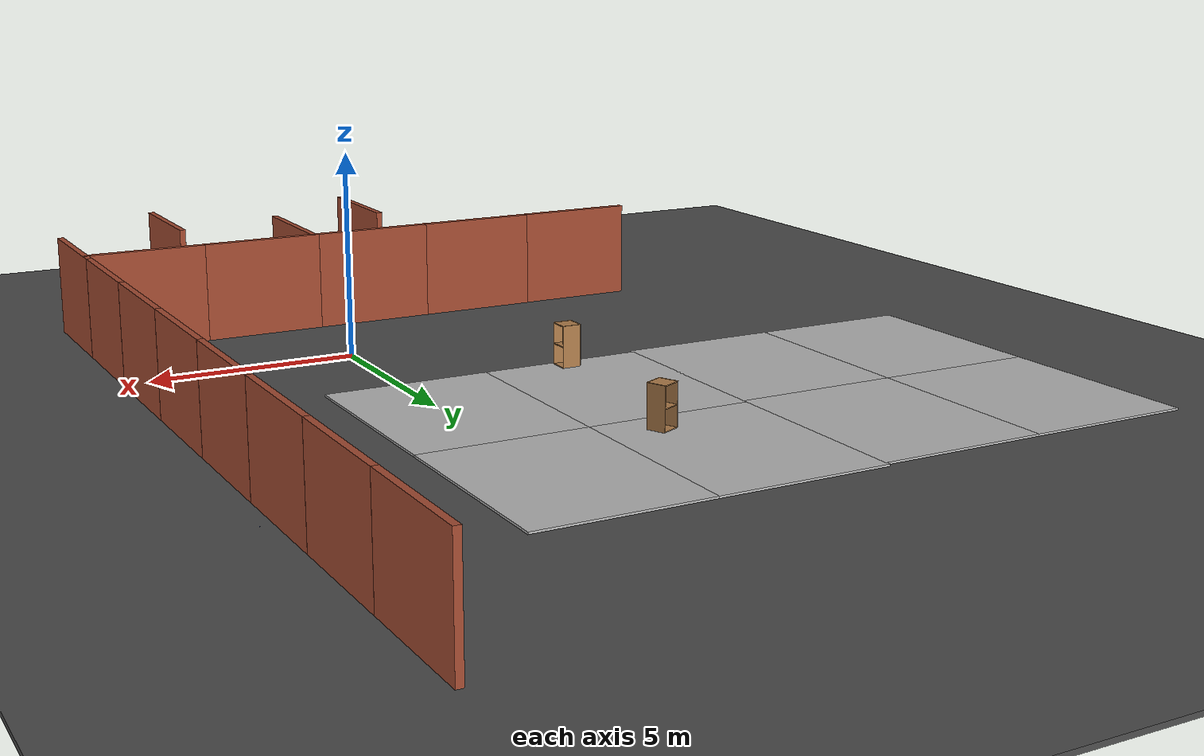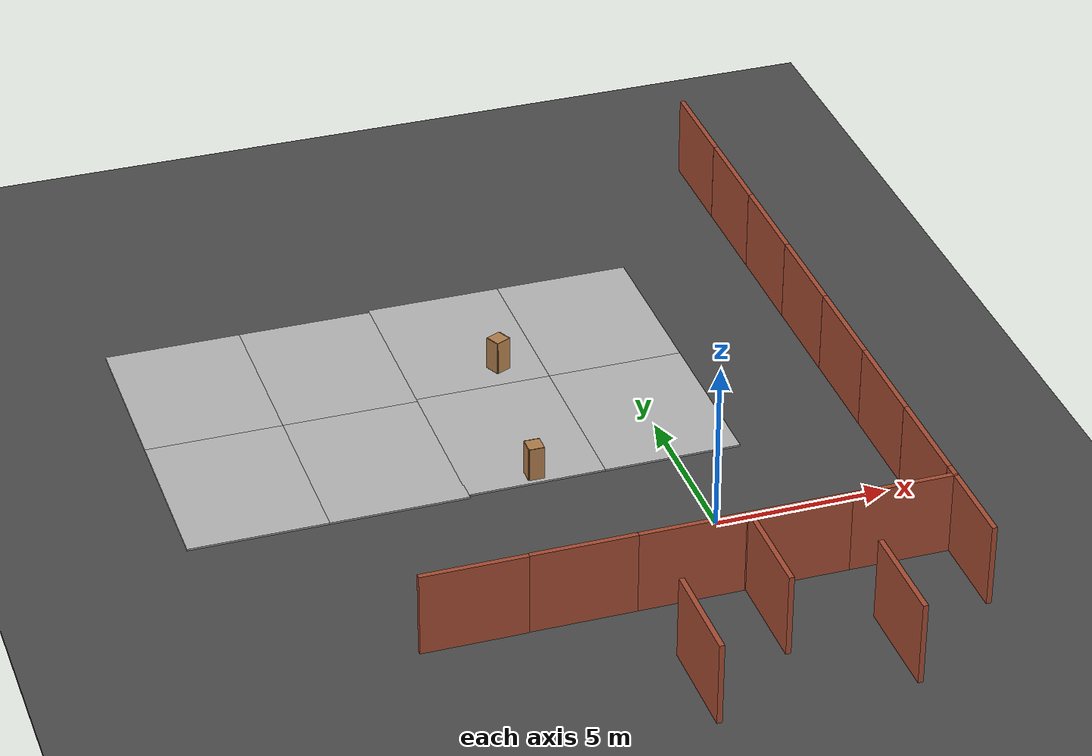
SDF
<sdf version="1.6">
 <world name="default">
  <scene>
   <sky><clouds><speed>5</speed></clouds></sky>
   <ambient>0.4 0.4 0.4 1</ambient>
   <background>0.7 0.7 0.7 1</background>
   <shadows>1</shadows>
  </scene>
  <light name="sun" type="directional">
   <pose>0 0 10 0 -0 0</pose>
   <diffuse>0.8 0.8 0.8 1</diffuse>
   <specular>0.2 0.2 0.2 1</specular>
   <attenuation>
    <range>1000</range>
    <constant>0.9</constant>
    <linear>0.01</linear>
    <quadratic>0.001</quadratic>
   </attenuation>
   <direction>-0.5 0.1 -0.9</direction>
  </light>
  <model name="ground_plane">
   <static>1</static>
   <link name="link">
    <collision name="collision">
     <geometry><plane><normal>0 0 1</normal><size>100 100</size></plane></geometry>
     <surface><friction><ode><mu>100</mu><mu2>50</mu2></ode></friction></surface>
    </collision>
    <visual name="visual">
     <cast_shadows>0</cast_shadows>
     <geometry><plane><normal>0 0 1</normal><size>100 100</size></plane></geometry>
     <material>
      <script><uri>file://media/materials/scripts/gazebo.material</uri><name>Gazebo/Grey</name></script>
     </material>
    </visual>
   </link>
  </model>
  <gravity>0 0 -9.8</gravity>
  <magnetic_field>6e-06 2.3e-05 -4.2e-05</magnetic_field>
  <atmosphere type="adiabatic"/>
  <physics name="default_physics" default="0" type="ode">
   <max_step_size>0.01</max_step_size>
   <real_time_factor>1</real_time_factor>
   <real_time_update_rate>100</real_time_update_rate>
  </physics>
  <scene><ambient>0.4 0.4 0.4 1</ambient><background>0.7 0.7 0.7 1</background><shadows>1</shadows></scene>
  <spherical_coordinates>
   <surface_model>EARTH_WGS84</surface_model>
   <latitude_deg>0</latitude_deg>
   <longitude_deg>0</longitude_deg>
   <elevation>0</elevation>
   <heading_deg>0</heading_deg>
  </spherical_coordinates>
  <model name="wall_brick_3m">
   <pose>2.53536 -6.79833 0 0 -0 1.57</pose>
   <link name="Wall_2">
    <collision name="Wall_2_Collision">
     <geometry><box><size>3 0.15 2.5</size></box></geometry>
     <pose>0 0 1.25 0 -0 0</pose>
    </collision>
    <visual name="Wall_2_Visual">
     <pose>0 0 1.25 0 -0 0</pose>
     <geometry><box><size>3 0.15 2.5</size></box></geometry>
     <material>
      <script><uri>file://media/materials/scripts/gazebo.material</uri><name>Gazebo/Bricks</name></script>
      <ambient>1 1 1 1</ambient>
     </material>
     <meta><layer>0</layer></meta>
    </visual>
   </link>
   <static>1</static>
  </model>
  <model name="wall_brick_3m_clone">
   <pose>-0.265232 -4.62667 0 0 -0 1.57</pose>
   <link name="Wall_2">
    <collision name="Wall_2_Collision">
     <geometry><box><size>3 0.15 2.5</size></box></geometry>
     <pose>0 0 1.25 0 -0 0</pose>
    </collision>
    <visual name="Wall_2_Visual">
     <pose>0 0 1.25 0 -0 0</pose>
     <geometry><box><size>3 0.15 2.5</size></box></geometry>
     <material>
      <script><uri>file://media/materials/scripts/gazebo.material</uri><name>Gazebo/Bricks</name></script>
      <ambient>1 1 1 1</ambient>
     </material>
     <meta><layer>0</layer></meta>
    </visual>
   </link>
   <static>1</static>
  </model>
  <model name="wall_brick_3m_clone_clone">
   <pose>-2.96784 -6.78032 0 0 -0 1.57</pose>
   <link name="Wall_2">
    <collision name="Wall_2_Collision">
     <geometry><box><size>3 0.15 2.5</size></box></geometry>
     <pose>0 0 1.25 0 -0 0</pose>
    </collision>
    <visual name="Wall_2_Visual">
     <pose>0 0 1.25 0 -0 0</pose>
     <geometry><box><size>3 0.15 2.5</size></box></geometry>
     <material>
      <script><uri>file://media/materials/scripts/gazebo.material</uri><name>Gazebo/Bricks</name></script>
      <ambient>1 1 1 1</ambient>
     </material>
     <meta><layer>0</layer></meta>
    </visual>
   </link>
   <static>1</static>
  </model>
  <model name="wall_brick_3m_clone_0">
   <pose>5.57817 -4.2114 0 0 -0 1.57</pose>
   <link name="Wall_2">
    <collision name="Wall_2_Collision">
     <geometry><box><size>3 0.15 2.5</size></box></geometry>
     <pose>0 0 1.25 0 -0 0</pose>
    </collision>
    <visual name="Wall_2_Visual">
     <pose>0 0 1.25 0 -0 0</pose>
     <geometry><box><size>3 0.15 2.5</size></box></geometry>
     <material>
      <script><uri>file://media/materials/scripts/gazebo.material</uri><name>Gazebo/Bricks</name></script>
      <ambient>1 1 1 1</ambient>
     </material>
     <meta><layer>0</layer></meta>
    </visual>
   </link>
   <static>1</static>
  </model>
  <model name="wall_brick_3m_clone_1">
   <pose>4.12513 -3.1 0 0 -0 0</pose>
   <link name="Wall_2">
    <collision name="Wall_2_Collision">
     <geometry><box><size>3 0.15 2.5</size></box></geometry>
     <pose>0 0 1.25 0 -0 0</pose>
    </collision>
    <visual name="Wall_2_Visual">
     <pose>0 0 1.25 0 -0 0</pose>
     <geometry><box><size>3 0.15 2.5</size></box></geometry>
     <material>
      <script><uri>file://media/materials/scripts/gazebo.material</uri><name>Gazebo/Bricks</name></script>
      <ambient>1 1 1 1</ambient>
     </material>
     <meta><layer>0</layer></meta>
    </visual>
   </link>
   <static>1</static>
  </model>
  <model name="wall_brick_3m_clone_1_clone">
   <pose>1.12513 -3.1 0 0 -0 0</pose>
   <link name="Wall_2">
    <collision name="Wall_2_Collision">
     <geometry><box><size>3 0.15 2.5</size></box></geometry>
     <pose>0 0 1.25 0 -0 0</pose>
    </collision>
    <visual name="Wall_2_Visual">
     <pose>0 0 1.25 0 -0 0</pose>
     <geometry><box><size>3 0.15 2.5</size></box></geometry>
     <material>
      <script><uri>file://media/materials/scripts/gazebo.material</uri><name>Gazebo/Bricks</name></script>
      <ambient>1 1 1 1</ambient>
     </material>
     <meta><layer>0</layer></meta>
    </visual>
   </link>
   <static>1</static>
  </model>
  <model name="wall_brick_3m_clone_1_clone_0">
   <pose>-1.87487 -3.1 0 0 -0 0</pose>
   <link name="Wall_2">
    <collision name="Wall_2_Collision">
     <geometry><box><size>3 0.15 2.5</size></box></geometry>
     <pose>0 0 1.25 0 -0 0</pose>
    </collision>
    <visual name="Wall_2_Visual">
     <pose>0 0 1.25 0 -0 0</pose>
     <geometry><box><size>3 0.15 2.5</size></box></geometry>
     <material>
      <script><uri>file://media/materials/scripts/gazebo.material</uri><name>Gazebo/Bricks</name></script>
      <ambient>1 1 1 1</ambient>
     </material>
     <meta><layer>0</layer></meta>
    </visual>
   </link>
   <static>1</static>
  </model>
  <model name="wall_brick_3m_clone_1_clone_1">
   <pose>-4.87487 -3.1 0 0 -0 0</pose>
   <link name="Wall_2">
    <collision name="Wall_2_Collision">
     <geometry><box><size>3 0.15 2.5</size></box></geometry>
     <pose>0 0 1.25 0 -0 0</pose>
    </collision>
    <visual name="Wall_2_Visual">
     <pose>0 0 1.25 0 -0 0</pose>
     <geometry><box><size>3 0.15 2.5</size></box></geometry>
     <material>
      <script><uri>file://media/materials/scripts/gazebo.material</uri><name>Gazebo/Bricks</name></script>
      <ambient>1 1 1 1</ambient>
     </material>
     <meta><layer>0</layer></meta>
    </visual>
   </link>
   <static>1</static>
  </model>
  <model name="wall_brick_3m_clone_1_clone_1_clone">
   <pose>-7.87487 -3.11682 0 0 -0 0</pose>
   <link name="Wall_2">
    <collision name="Wall_2_Collision">
     <geometry><box><size>3 0.15 2.5</size></box></geometry>
     <pose>0 0 1.25 0 -0 0</pose>
    </collision>
    <visual name="Wall_2_Visual">
     <pose>0 0 1.25 0 -0 0</pose>
     <geometry><box><size>3 0.15 2.5</size></box></geometry>
     <material>
      <script><uri>file://media/materials/scripts/gazebo.material</uri><name>Gazebo/Bricks</name></script>
      <ambient>1 1 1 1</ambient>
     </material>
     <meta><layer>0</layer></meta>
    </visual>
   </link>
   <static>1</static>
  </model>
  <model name="wall_brick_3m_clone_0_clone">
   <pose>5.57817 -1.21128 0 0 -0 1.57</pose>
   <link name="Wall_2">
    <collision name="Wall_2_Collision">
     <geometry><box><size>3 0.15 2.5</size></box></geometry>
     <pose>0 0 1.25 0 -0 0</pose>
    </collision>
    <visual name="Wall_2_Visual">
     <pose>0 0 1.25 0 -0 0</pose>
     <geometry><box><size>3 0.15 2.5</size></box></geometry>
     <material>
      <script><uri>file://media/materials/scripts/gazebo.material</uri><name>Gazebo/Bricks</name></script>
      <ambient>1 1 1 1</ambient>
     </material>
     <meta><layer>0</layer></meta>
    </visual>
   </link>
   <static>1</static>
  </model>
  <model name="wall_brick_3m_clone_0_clone_clone">
   <pose>5.57817 1.78884 0 0 -0 1.57</pose>
   <link name="Wall_2">
    <collision name="Wall_2_Collision">
     <geometry><box><size>3 0.15 2.5</size></box></geometry>
     <pose>0 0 1.25 0 -0 0</pose>
    </collision>
    <visual name="Wall_2_Visual">
     <pose>0 0 1.25 0 -0 0</pose>
     <geometry><box><size>3 0.15 2.5</size></box></geometry>
     <material>
      <script><uri>file://media/materials/scripts/gazebo.material</uri><name>Gazebo/Bricks</name></script>
      <ambient>1 1 1 1</ambient>
     </material>
     <meta><layer>0</layer></meta>
    </visual>
   </link>
   <static>1</static>
  </model>
  <model name="wall_brick_3m_clone_0_clone_clone_0">
   <pose>5.57817 4.78896 0 0 -0 1.57</pose>
   <link name="Wall_2">
    <collision name="Wall_2_Collision">
     <geometry><box><size>3 0.15 2.5</size></box></geometry>
     <pose>0 0 1.25 0 -0 0</pose>
    </collision>
    <visual name="Wall_2_Visual">
     <pose>0 0 1.25 0 -0 0</pose>
     <geometry><box><size>3 0.15 2.5</size></box></geometry>
     <material>
      <script><uri>file://media/materials/scripts/gazebo.material</uri><name>Gazebo/Bricks</name></script>
      <ambient>1 1 1 1</ambient>
     </material>
     <meta><layer>0</layer></meta>
    </visual>
   </link>
   <static>1</static>
  </model>
  <model name="wall_brick_3m_clone_0_clone_clone_0_clone">
   <pose>5.57817 7.78908 0 0 -0 1.57</pose>
   <link name="Wall_2">
    <collision name="Wall_2_Collision">
     <geometry><box><size>3 0.15 2.5</size></box></geometry>
     <pose>0 0 1.25 0 -0 0</pose>
    </collision>
    <visual name="Wall_2_Visual">
     <pose>0 0 1.25 0 -0 0</pose>
     <geometry><box><size>3 0.15 2.5</size></box></geometry>
     <material>
      <script><uri>file://media/materials/scripts/gazebo.material</uri><name>Gazebo/Bricks</name></script>
      <ambient>1 1 1 1</ambient>
     </material>
     <meta><layer>0</layer></meta>
    </visual>
   </link>
   <static>1</static>
  </model>
  <model name="wall_brick_3m_clone_0_clone_clone_0_clone_clone">
   <pose>5.57817 10.7892 0 0 -0 1.57</pose>
   <link name="Wall_2">
    <collision name="Wall_2_Collision">
     <geometry><box><size>3 0.15 2.5</size></box></geometry>
     <pose>0 0 1.25 0 -0 0</pose>
    </collision>
    <visual name="Wall_2_Visual">
     <pose>0 0 1.25 0 -0 0</pose>
     <geometry><box><size>3 0.15 2.5</size></box></geometry>
     <material>
      <script><uri>file://media/materials/scripts/gazebo.material</uri><name>Gazebo/Bricks</name></script>
      <ambient>1 1 1 1</ambient>
     </material>
     <meta><layer>0</layer></meta>
    </visual>
   </link>
   <static>1</static>
  </model>
  <model name="wall_brick_3m_clone_0_clone_clone_0_clone_clone_0">
   <pose>5.57817 13.7893 0 0 -0 1.57</pose>
   <link name="Wall_2">
    <collision name="Wall_2_Collision">
     <geometry><box><size>3 0.15 2.5</size></box></geometry>
     <pose>0 0 1.25 0 -0 0</pose>
    </collision>
    <visual name="Wall_2_Visual">
     <pose>0 0 1.25 0 -0 0</pose>
     <geometry><box><size>3 0.15 2.5</size></box></geometry>
     <material>
      <script><uri>file://media/materials/scripts/gazebo.material</uri><name>Gazebo/Bricks</name></script>
      <ambient>1 1 1 1</ambient>
     </material>
     <meta><layer>0</layer></meta>
    </visual>
   </link>
   <static>1</static>
  </model>
  <model name="wall_brick_3m_clone_0_clone_clone_0_clone_clone_0_clone">
   <pose>5.57817 16.7894 0 0 -0 1.57</pose>
   <link name="Wall_2">
    <collision name="Wall_2_Collision">
     <geometry><box><size>3 0.15 2.5</size></box></geometry>
     <pose>0 0 1.25 0 -0 0</pose>
    </collision>
    <visual name="Wall_2_Visual">
     <pose>0 0 1.25 0 -0 0</pose>
     <geometry><box><size>3 0.15 2.5</size></box></geometry>
     <material>
      <script><uri>file://media/materials/scripts/gazebo.material</uri><name>Gazebo/Bricks</name></script>
      <ambient>1 1 1 1</ambient>
     </material>
     <meta><layer>0</layer></meta>
    </visual>
   </link>
   <static>1</static>
  </model>
  <model name="asphalt_plane">
   <static>1</static>
   <link name="link">
    <collision name="collision"><geometry><box><size>101.137 105.194 0.1</size></box></geometry></collision>
    <visual name="visual">
     <cast_shadows>0</cast_shadows>
     <geometry><box><size>101.137 105.194 0.1</size></box></geometry>
     <material>
      <script>
       <uri>model://asphalt_plane/materials/scripts</uri>
       <uri>model://asphalt_plane/materials/textures</uri>
       <name>vrc/asphalt</name>
      </script>
     </material>
    </visual>
   </link>
   <pose>-4.73912 0.887982 0 0 -0 0</pose>
  </model>
  <model name="mud_box">
   <static>1</static>
   <link name="link">
    <collision name="collision"><geometry><box><size>8 10 0.2</size></box></geometry></collision>
    <visual name="visual_1">
     <pose>-2 2.5 0 0 -0 0</pose>
     <cast_shadows>0</cast_shadows>
     <geometry><box><size>4 5 0.2</size></box></geometry>
     <material>
      <script>
       <uri>model://mud_box/materials/scripts</uri>
       <uri>model://mud_box/materials/textures</uri>
       <name>vrc/mud</name>
      </script>
     </material>
    </visual>
    <visual name="visual_2">
     <pose>2 2.5 0 0 -0 0</pose>
     <cast_shadows>0</cast_shadows>
     <geometry><box><size>4 5 0.2</size></box></geometry>
     <material>
      <script>
       <uri>model://mud_box/materials/scripts</uri>
       <uri>model://mud_box/materials/textures</uri>
       <name>vrc/mud</name>
      </script>
     </material>
    </visual>
    <visual name="visual_3">
     <pose>2 -2.5 0 0 -0 0</pose>
     <cast_shadows>0</cast_shadows>
     <geometry><box><size>4 5 0.2</size></box></geometry>
     <material>
      <script>
       <uri>model://mud_box/materials/scripts</uri>
       <uri>model://mud_box/materials/textures</uri>
       <name>vrc/mud</name>
      </script>
     </material>
    </visual>
    <visual name="visual_4">
     <pose>-2 -2.5 0 0 -0 0</pose>
     <cast_shadows>0</cast_shadows>
     <geometry><box><size>4 5 0.2</size></box></geometry>
     <material>
      <script>
       <uri>model://mud_box/materials/scripts</uri>
       <uri>model://mud_box/materials/textures</uri>
       <name>vrc/mud</name>
      </script>
     </material>
    </visual>
   </link>
   <pose>-2.08423 8.22908 0 0 -0 0</pose>
  </model>
  <model name="mud_box_clone">
   <static>1</static>
   <link name="link">
    <collision name="collision"><geometry><box><size>8 10 0.2</size></box></geometry></collision>
    <visual name="visual_1">
     <pose>-2 2.5 0 0 -0 0</pose>
     <cast_shadows>0</cast_shadows>
     <geometry><box><size>4 5 0.2</size></box></geometry>
     <material>
      <script>
       <uri>model://mud_box/materials/scripts</uri>
       <uri>model://mud_box/materials/textures</uri>
       <name>vrc/mud</name>
      </script>
     </material>
    </visual>
    <visual name="visual_2">
     <pose>2 2.5 0 0 -0 0</pose>
     <cast_shadows>0</cast_shadows>
     <geometry><box><size>4 5 0.2</size></box></geometry>
     <material>
      <script>
       <uri>model://mud_box/materials/scripts</uri>
       <uri>model://mud_box/materials/textures</uri>
       <name>vrc/mud</name>
      </script>
     </material>
    </visual>
    <visual name="visual_3">
     <pose>2 -2.5 0 0 -0 0</pose>
     <cast_shadows>0</cast_shadows>
     <geometry><box><size>4 5 0.2</size></box></geometry>
     <material>
      <script>
       <uri>model://mud_box/materials/scripts</uri>
       <uri>model://mud_box/materials/textures</uri>
       <name>vrc/mud</name>
      </script>
     </material>
    </visual>
    <visual name="visual_4">
     <pose>-2 -2.5 0 0 -0 0</pose>
     <cast_shadows>0</cast_shadows>
     <geometry><box><size>4 5 0.2</size></box></geometry>
     <material>
      <script>
       <uri>model://mud_box/materials/scripts</uri>
       <uri>model://mud_box/materials/textures</uri>
       <name>vrc/mud</name>
      </script>
     </material>
    </visual>
   </link>
   <pose>-10.0537 8.12309 0 0 -0 0</pose>
  </model>
  <model name="marble_1_5cm">
   <link name="link">
    <pose>0 0 0.0075 0 -0 0</pose>
    <inertial>
     <mass>0.0062</mass>
     <inertia>
      <ixx>1.395e-07</ixx>
      <ixy>0</ixy>
      <ixz>0</ixz>
      <iyy>1.395e-07</iyy>
      <iyz>0</iyz>
      <izz>1.395e-07</izz>
     </inertia>
    </inertial>
    <collision name="collision">
     <geometry><sphere><radius>0.0075</radius></sphere></geometry>
     <surface>
      <contact>
       <poissons_ratio>0.22</poissons_ratio>
       <elastic_modulus>5.1e+10</elastic_modulus>
       <ode><kp>100000</kp><kd>100</kd><max_vel>100</max_vel><min_depth>0.001</min_depth></ode>
      </contact>
      <friction>
       <torsional>
        <coefficient>1</coefficient>
        <use_patch_radius>0</use_patch_radius>
        <surface_radius>0.01</surface_radius>
       </torsional>
      </friction>
     </surface>
    </collision>
    <visual name="visual">
     <geometry><sphere><radius>0.0075</radius></sphere></geometry>
     <material>
      <script><uri>file://media/materials/scripts/gazebo.material</uri><name>Gazebo/Blue</name></script>
     </material>
    </visual>
    <velocity_decay><linear>0</linear><angular>0.005</angular></velocity_decay>
   </link>
   <pose>5.91825 10.5896 0.048999 0 -0 0</pose>
  </model>
  <model name="cabinet">
   <static>1</static>
   <link name="cabinet_bottom_plate">
    <inertial>
     <pose>0 0 -1 0 -0 0</pose>
     <inertia><ixx>2.05</ixx><ixy>0</ixy><ixz>0</ixz><iyy>2.05</iyy><iyz>0</iyz><izz>2.05</izz></inertia>
     <mass>25</mass>
    </inertial>
    <collision name="cabinet_bottom_plate_geom">
     <pose>0 0 0.01 0 -0 0</pose>
     <geometry><box><size>0.45 0.45 0.02</size></box></geometry>
    </collision>
    <visual name="cabinet_bottom_plate_geom_visual">
     <pose>0 0 0.01 0 -0 0</pose>
     <geometry><box><size>0.45 0.45 0.02</size></box></geometry>
     <material>
      <script><uri>file://media/materials/scripts/gazebo.material</uri><name>Gazebo/Wood</name></script>
     </material>
    </visual>
    <collision name="cabinet_bottom_plate_geom_cabinet_back_plate">
     <pose>0.235 0 0.51 0 -0 0</pose>
     <geometry><box><size>0.02 0.45 1.02</size></box></geometry>
    </collision>
    <visual name="cabinet_bottom_plate_geom_cabinet_back_plate_visual">
     <pose>0.235 0 0.51 0 -0 0</pose>
     <geometry><box><size>0.02 0.45 1.02</size></box></geometry>
     <material>
      <script><uri>file://media/materials/scripts/gazebo.material</uri><name>Gazebo/Wood</name></script>
     </material>
    </visual>
    <collision name="cabinet_bottom_plate_geom_cabinet_left_plate">
     <pose>0 0.235 0.51 0 -0 0</pose>
     <geometry><box><size>0.45 0.02 1.02</size></box></geometry>
    </collision>
    <visual name="cabinet_bottom_plate_geom_cabinet_left_plate_visual">
     <pose>0 0.235 0.51 0 -0 0</pose>
     <geometry><box><size>0.45 0.02 1.02</size></box></geometry>
     <material>
      <script><uri>file://media/materials/scripts/gazebo.material</uri><name>Gazebo/Wood</name></script>
     </material>
    </visual>
    <collision name="cabinet_bottom_plate_geom_cabinet_middle_plate">
     <pose>0 0 0.51 0 -0 0</pose>
     <geometry><box><size>0.45 0.45 0.02</size></box></geometry>
    </collision>
    <visual name="cabinet_bottom_plate_geom_cabinet_middle_plate_visual">
     <pose>0 0 0.51 0 -0 0</pose>
     <geometry><box><size>0.45 0.45 0.02</size></box></geometry>
     <material>
      <script><uri>file://media/materials/scripts/gazebo.material</uri><name>Gazebo/Wood</name></script>
     </material>
    </visual>
    <collision name="cabinet_bottom_plate_geom_cabinet_right_plate">
     <pose>0 -0.235 0.51 0 -0 0</pose>
     <geometry><box><size>0.45 0.02 1.02</size></box></geometry>
    </collision>
    <visual name="cabinet_bottom_plate_geom_cabinet_right_plate_visual">
     <pose>0 -0.235 0.51 0 -0 0</pose>
     <geometry><box><size>0.45 0.02 1.02</size></box></geometry>
     <material>
      <script><uri>file://media/materials/scripts/gazebo.material</uri><name>Gazebo/Wood</name></script>
     </material>
    </visual>
    <collision name="cabinet_bottom_plate_geom_cabinet_top_plate">
     <pose>0 0 1.01 0 -0 0</pose>
     <geometry><box><size>0.45 0.45 0.02</size></box></geometry>
    </collision>
    <visual name="cabinet_bottom_plate_geom_cabinet_top_plate_visual">
     <pose>0 0 1.01 0 -0 0</pose>
     <geometry><box><size>0.45 0.45 0.02</size></box></geometry>
     <material>
      <script><uri>file://media/materials/scripts/gazebo.material</uri><name>Gazebo/Wood</name></script>
     </material>
    </visual>
   </link>
   <pose>-4.04535 3.59673 0.109518 0 -0 3.13851</pose>
  </model>
  <model name="cabinet_clone">
   <static>1</static>
   <link name="cabinet_bottom_plate">
    <inertial>
     <pose>0 0 -1 0 -0 0</pose>
     <inertia><ixx>2.05</ixx><ixy>0</ixy><ixz>0</ixz><iyy>2.05</iyy><iyz>0</iyz><izz>2.05</izz></inertia>
     <mass>25</mass>
    </inertial>
    <collision name="cabinet_bottom_plate_geom">
     <pose>0 0 0.01 0 -0 0</pose>
     <geometry><box><size>0.45 0.45 0.02</size></box></geometry>
    </collision>
    <visual name="cabinet_bottom_plate_geom_visual">
     <pose>0 0 0.01 0 -0 0</pose>
     <geometry><box><size>0.45 0.45 0.02</size></box></geometry>
     <material>
      <script><uri>file://media/materials/scripts/gazebo.material</uri><name>Gazebo/Wood</name></script>
     </material>
    </visual>
    <collision name="cabinet_bottom_plate_geom_cabinet_back_plate">
     <pose>0.235 0 0.51 0 -0 0</pose>
     <geometry><box><size>0.02 0.45 1.02</size></box></geometry>
    </collision>
    <visual name="cabinet_bottom_plate_geom_cabinet_back_plate_visual">
     <pose>0.235 0 0.51 0 -0 0</pose>
     <geometry><box><size>0.02 0.45 1.02</size></box></geometry>
     <material>
      <script><uri>file://media/materials/scripts/gazebo.material</uri><name>Gazebo/Wood</name></script>
     </material>
    </visual>
    <collision name="cabinet_bottom_plate_geom_cabinet_left_plate">
     <pose>0 0.235 0.51 0 -0 0</pose>
     <geometry><box><size>0.45 0.02 1.02</size></box></geometry>
    </collision>
    <visual name="cabinet_bottom_plate_geom_cabinet_left_plate_visual">
     <pose>0 0.235 0.51 0 -0 0</pose>
     <geometry><box><size>0.45 0.02 1.02</size></box></geometry>
     <material>
      <script><uri>file://media/materials/scripts/gazebo.material</uri><name>Gazebo/Wood</name></script>
     </material>
    </visual>
    <collision name="cabinet_bottom_plate_geom_cabinet_middle_plate">
     <pose>0 0 0.51 0 -0 0</pose>
     <geometry><box><size>0.45 0.45 0.02</size></box></geometry>
    </collision>
    <visual name="cabinet_bottom_plate_geom_cabinet_middle_plate_visual">
     <pose>0 0 0.51 0 -0 0</pose>
     <geometry><box><size>0.45 0.45 0.02</size></box></geometry>
     <material>
      <script><uri>file://media/materials/scripts/gazebo.material</uri><name>Gazebo/Wood</name></script>
     </material>
    </visual>
    <collision name="cabinet_bottom_plate_geom_cabinet_right_plate">
     <pose>0 -0.235 0.51 0 -0 0</pose>
     <geometry><box><size>0.45 0.02 1.02</size></box></geometry>
    </collision>
    <visual name="cabinet_bottom_plate_geom_cabinet_right_plate_visual">
     <pose>0 -0.235 0.51 0 -0 0</pose>
     <geometry><box><size>0.45 0.02 1.02</size></box></geometry>
     <material>
      <script><uri>file://media/materials/scripts/gazebo.material</uri><name>Gazebo/Wood</name></script>
     </material>
    </visual>
    <collision name="cabinet_bottom_plate_geom_cabinet_top_plate">
     <pose>0 0 1.01 0 -0 0</pose>
     <geometry><box><size>0.45 0.45 0.02</size></box></geometry>
    </collision>
    <visual name="cabinet_bottom_plate_geom_cabinet_top_plate_visual">
     <pose>0 0 1.01 0 -0 0</pose>
     <geometry><box><size>0.45 0.45 0.02</size></box></geometry>
     <material>
      <script><uri>file://media/materials/scripts/gazebo.material</uri><name>Gazebo/Wood</name></script>
     </material>
    </visual>
   </link>
   <pose>-3.35367 9.09199 0.109518 0 0 -1.13256</pose>
  </model>
 </world>
</sdf>
